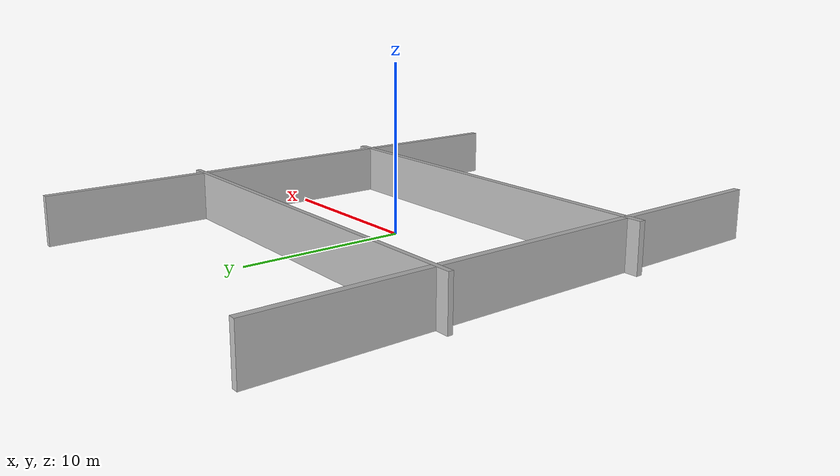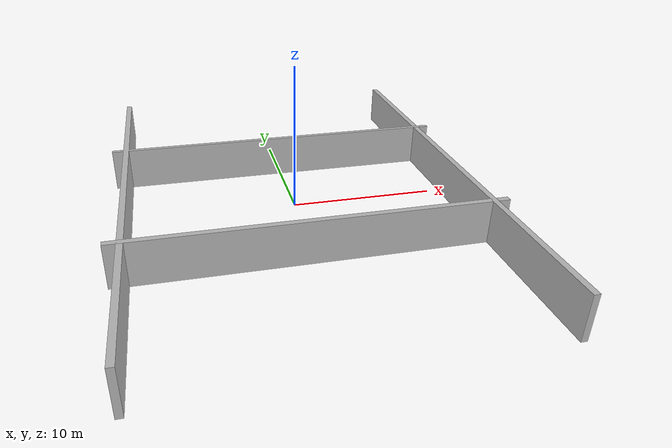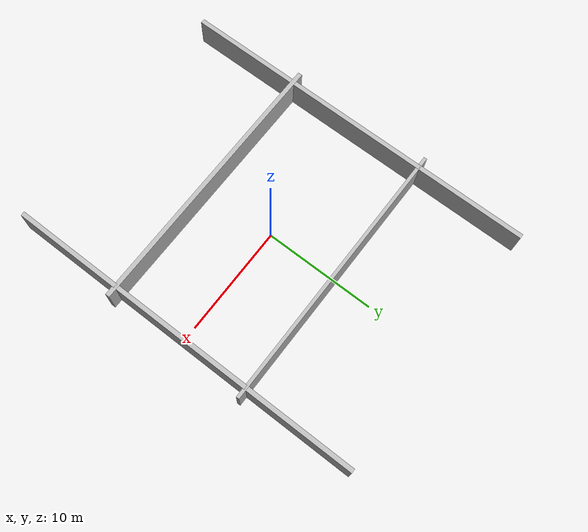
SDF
<?xml version="1.0"?>
<sdf version="1.6">
  <model name="wall">
    <!-- Front Wall (positive y-axis) -->
    <pose>0 6.5 1 0 0 0</pose>
    <link name="link">
      <collision name="collision">
        <geometry>
          <box>
            <size>25 0.4 3</size>  <!-- 长度 13 米，厚度 0.1 米，高度 3 米 -->
          </box>
        </geometry>
      </collision>
      <visual name="visual">
        <geometry>
          <box>
            <size>25 0.3 3</size>
          </box>
        </geometry>
      </visual>
    </link>
  </model>

  <model name="wall2">
    <!-- Right Wall (positive x-axis) -->
    <pose>11.5 0 1 0 0 1.5708</pose>  <!-- Rotate 90 degrees (pi/2) around Z-axis -->
    <link name="link">
      <collision name="collision">
        <geometry>
          <box>
            <size>33 0.4 3</size>  <!-- 长度 23 米，厚度 0.1 米，高度 3 米 -->
          </box>
        </geometry>
      </collision>
      <visual name="visual">
        <geometry>
          <box>
            <size>33 0.4 3</size>
          </box>
        </geometry>
      </visual>
    </link>
  </model>

  <model name="wall3">
    <!-- Back Wall (negative y-axis) -->
    <pose>0 -6.5 1 0 0 0</pose>
    <link name="link">
      <collision name="collision">
        <geometry>
          <box>
            <size>25 0.4 3</size>  <!-- 长度 13 米，厚度 0.1 米，高度 3 米 -->
          </box>
        </geometry>
      </collision>
      <visual name="visual">
        <geometry>
          <box>
            <size>25 0.4 3</size>
          </box>
        </geometry>
      </visual>
    </link>
  </model>

  <model name="wall4">
    <!-- Left Wall (negative x-axis) -->
    <pose>-11.5 0 1 0 0 -1.5708</pose>  <!-- Rotate -90 degrees (-pi/2) around Z-axis -->
    <link name="link">
      <collision name="collision">
        <geometry>
          <box>
            <size>33 0.4 3</size>  <!-- 长度 23 米，厚度 0.1 米，高度 3 米 -->
          </box>
        </geometry>
      </collision>
      <visual name="visual">
        <geometry>
          <box>
            <size>33 0.4 3</size>
          </box>
        </geometry>
      </visual>
    </link>
  </model>
</sdf>
